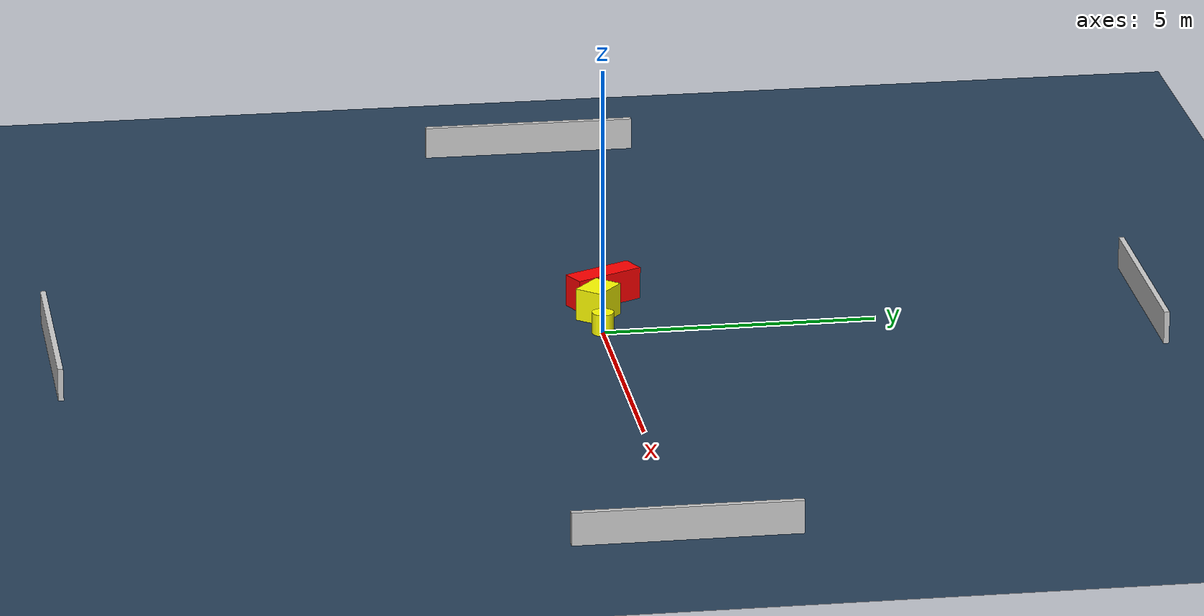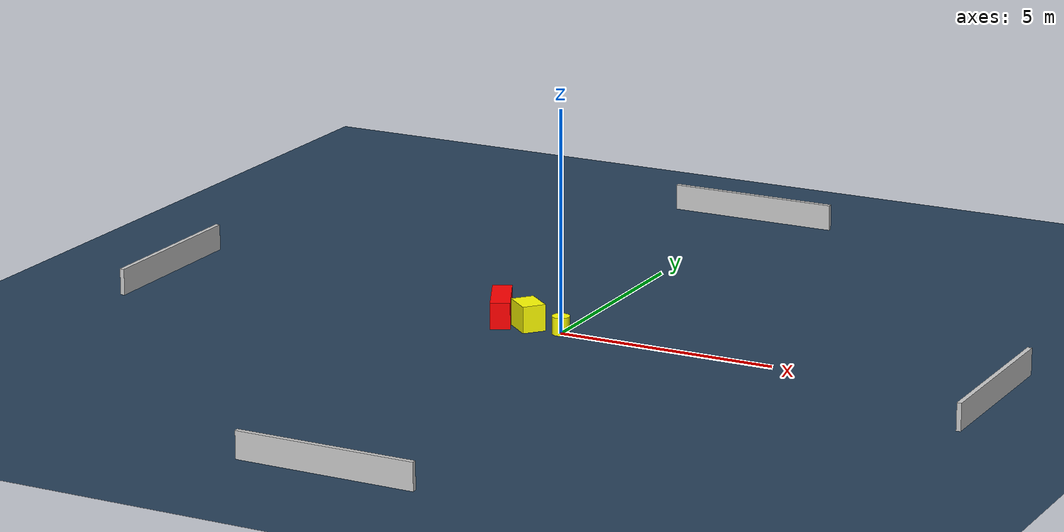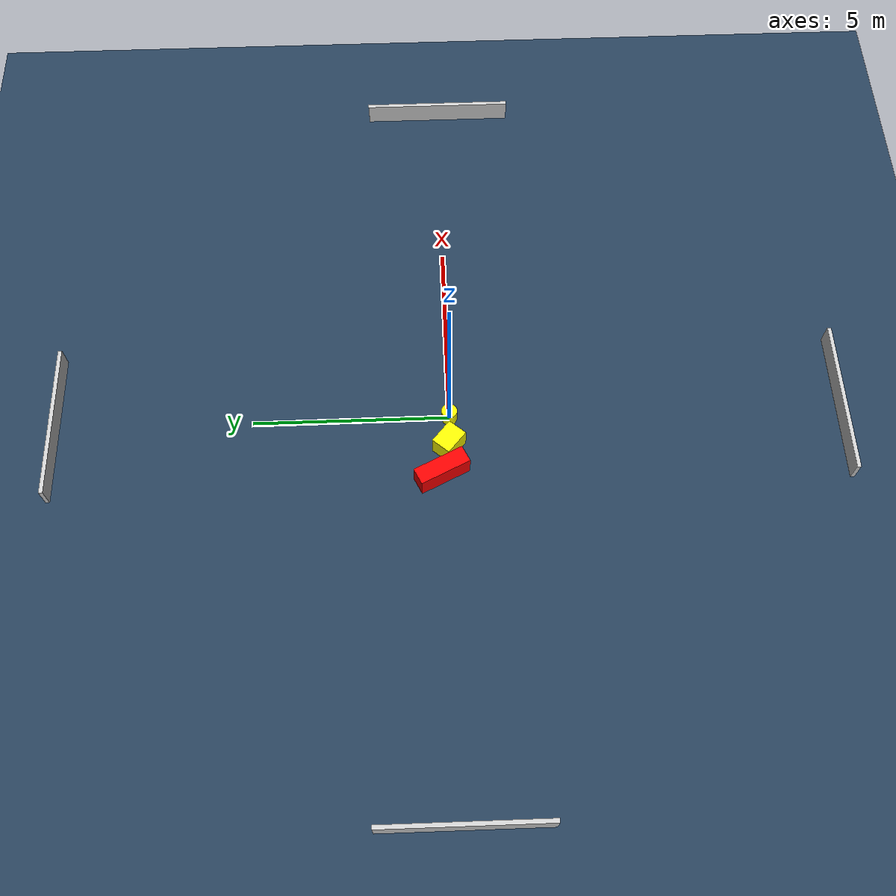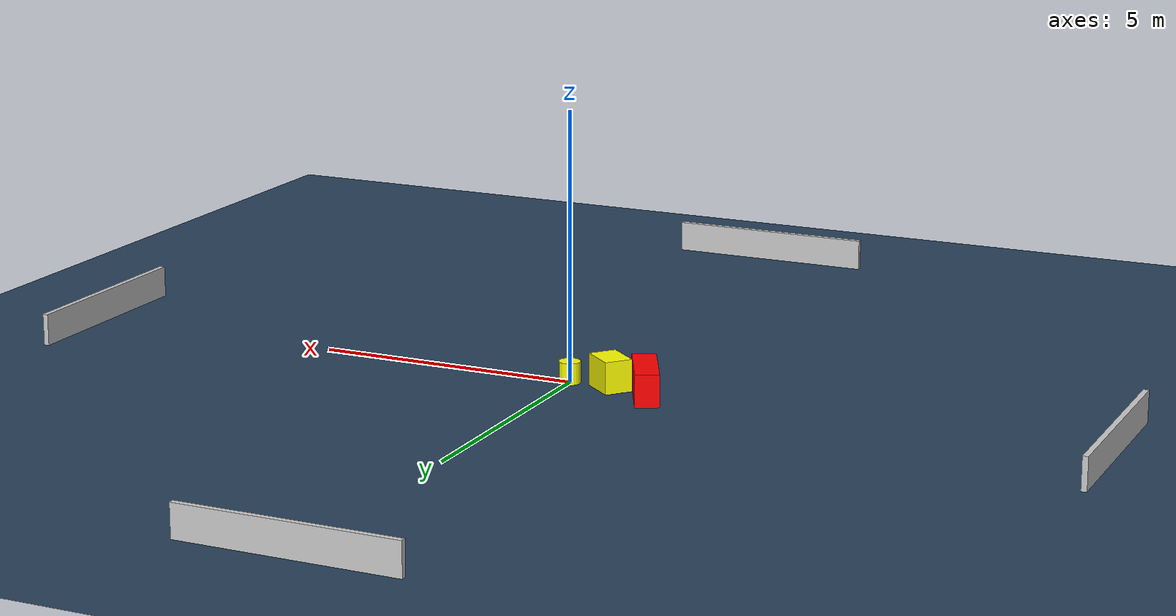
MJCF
<?xml version="1.0" ?>
<mujoco model="generated_environment">
  <option timestep="0.01" integrator="RK4" cone="elliptic"/>
  <default>
    <geom density="1"/>
  </default>
  <asset>
    <texture builtin="gradient" height="3072" name="skybox" rgb1="0.3 0.5 0.7" rgb2="0 0 0" type="skybox" width="512"/>
    <texture builtin="checker" height="300" name="groundplane" rgb1="0.2 0.3 0.4" rgb2="0.1 0.2 0.3" type="2d" width="300"/>
    <material name="groundplane" reflectance="0.2" texrepeat="5 5" texture="groundplane"/>
  </asset>
  <worldbody>
    <light dir="0 0 -1" directional="true" pos="0 0 1.5"/>
    <geom condim="3" friction="0.5 0.005 0.001" material="groundplane" name="floor" pos="0 0 0" size="0 0 0.05" type="plane"/>
    <body name="walls">
      <geom name="wall_1" condim="4" pos="-10.0 0.0 0.3" rgba="0.800000011920929 0.800000011920929 0.800000011920929 1.0" size="0.05 2.0 0.3" type="box"/>
      <geom name="wall_2" condim="4" pos="10.0 0.0 0.3" rgba="0.800000011920929 0.800000011920929 0.800000011920929 1.0" size="0.05 2.0 0.3" type="box"/>
      <geom name="wall_3" condim="4" pos="0.0 -10.0 0.3" rgba="0.800000011920929 0.800000011920929 0.800000011920929 1.0" size="2.0 0.05 0.3" type="box"/>
      <geom name="wall_4" condim="4" pos="0.0 10.0 0.3" rgba="0.800000011920929 0.800000011920929 0.800000011920929 1.0" size="2.0 0.05 0.3" type="box"/>
    </body>
    <body name="robot">
      <joint name="joint_x" type="slide" pos="0 0 0" axis="1 0 0"/>
      <joint name="joint_y" type="slide" pos="0 0 0" axis="0 1 0"/>
      <geom name="robot" type="cylinder" pos="0.0 0.0 0.2" size="0.2 0.2 0.0" mass="5.0" friction="1.0 0.005 0.0001" condim="4" rgba="1.0 1.0 0.0 1.0"/>
    </body>
    <body name="obstacle_1_movable">
      <geom name="obstacle_1_movable" condim="4" pos="-0.8163860852764848 0.03240127315180146 0.3" euler="0 0 319.81607404444384" friction="0.0 0.005 0.001" rgba="1.0 1.0 0.0 1.0" size="0.3432070978706676 0.26225520157255466 0.3" type="box" mass="0.1"/>
      <joint type="free"/>
    </body>
    <body name="obstacle_2_static">
      <geom name="obstacle_2_static" condim="4" pos="-1.590304352234633 0.23600190878981253 0.3" euler="0 0 25.977203918780578" friction="0.0 0.005 0.001" rgba="1.0 0.0 0.0 1.0" size="0.22051497955244367 0.672766272646822 0.3" type="box"/>
    </body>
  </worldbody>
  <actuator>
    <motor name="actuator_x" joint="joint_x" gear="1" ctrlrange="-1 1"/>
    <motor name="actuator_y" joint="joint_y" gear="1" ctrlrange="-1 1"/>
  </actuator>
</mujoco>
